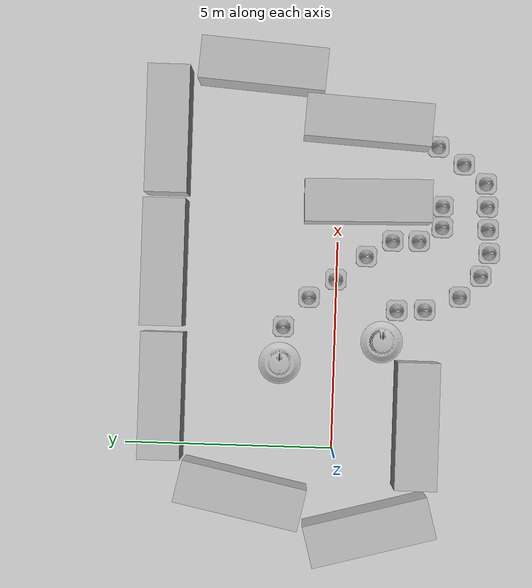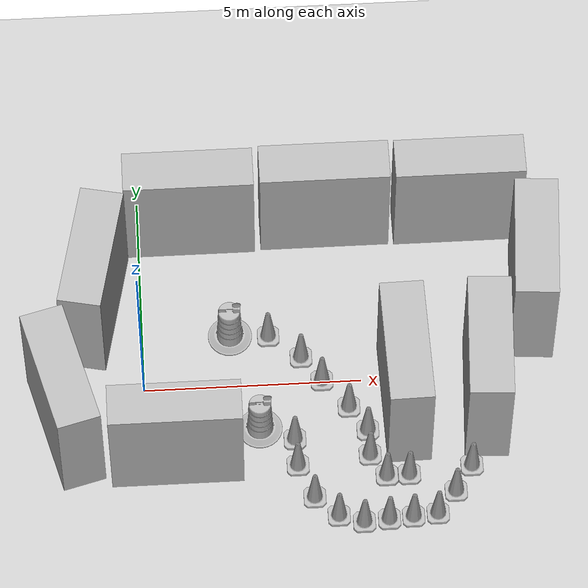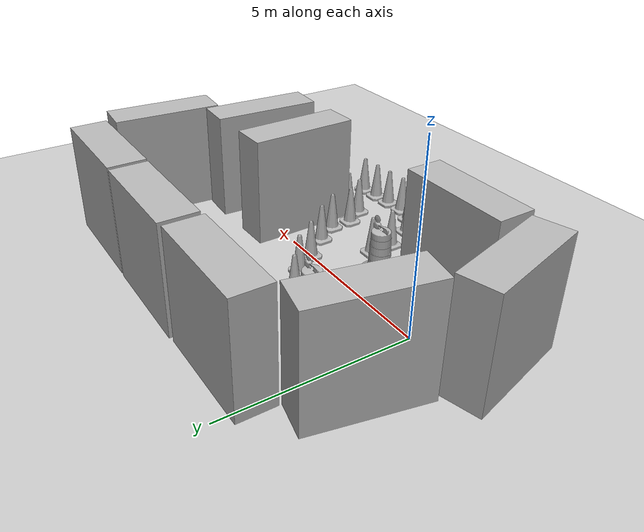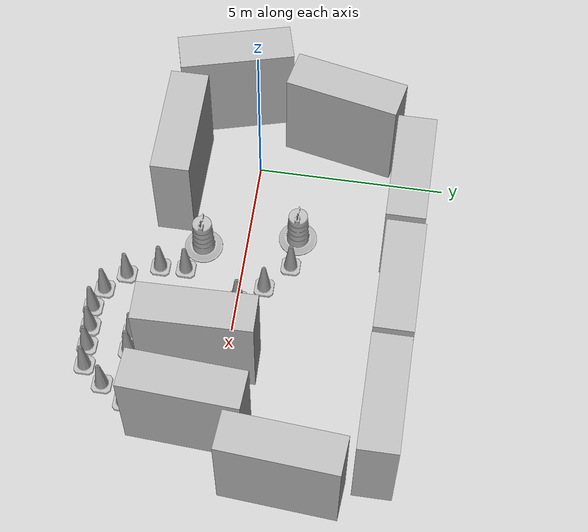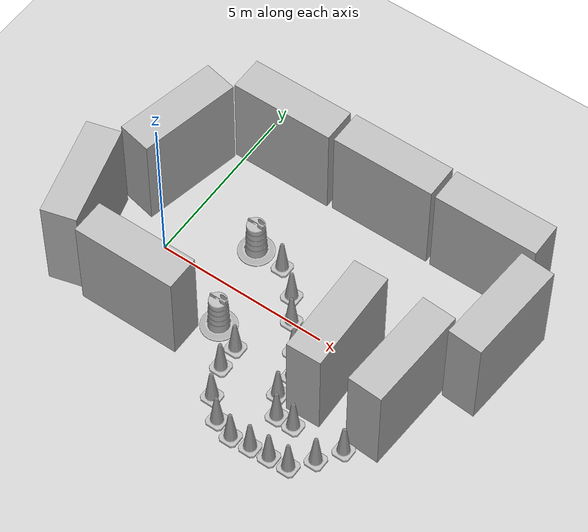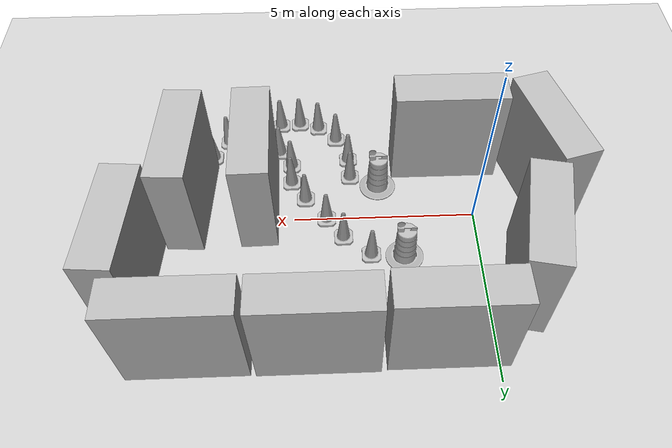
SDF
<sdf version="1.7">
 <world name="default">
  <light name="sun" type="directional">
   <pose>0 0 10 0 -0 0</pose>
   <diffuse>0.8 0.8 0.8 1</diffuse>
   <specular>0.2 0.2 0.2 1</specular>
   <attenuation>
    <range>1000</range>
    <constant>0.9</constant>
    <linear>0.01</linear>
    <quadratic>0.001</quadratic>
   </attenuation>
   <direction>-0.5 0.1 -0.9</direction>
   <spot><inner_angle>0</inner_angle><outer_angle>0</outer_angle><falloff>0</falloff></spot>
  </light>
  <model name="ground_plane">
   <static>1</static>
   <link name="link">
    <collision name="collision">
     <geometry><plane><normal>0 0 1</normal><size>100 100</size></plane></geometry>
     <surface>
      <contact><collide_bitmask>65535</collide_bitmask></contact>
      <friction><ode><mu>100</mu><mu2>50</mu2></ode></friction>
     </surface>
    </collision>
    <visual name="visual">
     <cast_shadows>0</cast_shadows>
     <geometry><plane><normal>0 0 1</normal><size>100 100</size></plane></geometry>
     <material>
      <script><uri>file://media/materials/scripts/gazebo.material</uri><name>Gazebo/Grey</name></script>
     </material>
    </visual>
   </link>
  </model>
  <gravity>0 0 -9.8</gravity>
  <magnetic_field>6e-06 2.3e-05 -4.2e-05</magnetic_field>
  <atmosphere type="adiabatic"/>
  <physics type="ode">
   <max_step_size>0.001</max_step_size>
   <real_time_factor>1</real_time_factor>
   <real_time_update_rate>1000</real_time_update_rate>
  </physics>
  <scene><ambient>0.4 0.4 0.4 1</ambient><background>0.7 0.7 0.7 1</background><shadows>1</shadows></scene>
  <audio><device>default</device></audio>
  <spherical_coordinates>
   <surface_model>EARTH_WGS84</surface_model>
   <latitude_deg>0</latitude_deg>
   <longitude_deg>0</longitude_deg>
   <elevation>0</elevation>
   <heading_deg>0</heading_deg>
  </spherical_coordinates>
  <model name="brick_box_3x1x3">
   <static>1</static>
   <link name="chassis">
    <pose>0 0 1.5 0 -0 0</pose>
    <collision name="collision"><geometry><box><size>3 1 3</size></box></geometry></collision>
    <visual name="visual">
     <geometry><mesh><uri>model://brick_box_3x1x3/meshes/simple_box.dae</uri><scale>3 1 3</scale></mesh></geometry>
     <material>
      <script>
       <uri>model://brick_box_3x1x3/materials/scripts</uri>
       <uri>model://brick_box_3x1x3/materials/textures</uri>
       <name>BrickBox/Diffuse</name>
      </script>
     </material>
    </visual>
   </link>
   <pose>1.22621 4.08594 0 0 -0 0</pose>
  </model>
  <model name="Construction Barrel">
   <link name="link">
    <inertial>
     <pose>0 0 0.4 0 -0 0</pose>
     <mass>500</mass>
     <inertia><ixx>51.2096</ixx><iyy>51.2096</iyy><izz>25</izz><ixy>0</ixy><ixz>0</ixz><iyz>0</iyz></inertia>
    </inertial>
    <collision name="collision">
     <geometry><mesh><uri>model://construction_barrel/meshes/construction_barrel.dae</uri></mesh></geometry>
    </collision>
    <visual name="visual">
     <geometry><mesh><uri>model://construction_barrel/meshes/construction_barrel.dae</uri></mesh></geometry>
    </visual>
   </link>
   <pose>2.03383 1.32116 0 1e-06 1e-06 -6.5e-05</pose>
  </model>
  <model name="Construction Barrel_0">
   <link name="link">
    <inertial>
     <pose>0 0 0.4 0 -0 0</pose>
     <mass>500</mass>
     <inertia><ixx>51.2096</ixx><iyy>51.2096</iyy><izz>25</izz><ixy>0</ixy><ixz>0</ixz><iyz>0</iyz></inertia>
    </inertial>
    <collision name="collision">
     <geometry><mesh><uri>model://construction_barrel/meshes/construction_barrel.dae</uri></mesh></geometry>
    </collision>
    <visual name="visual">
     <geometry><mesh><uri>model://construction_barrel/meshes/construction_barrel.dae</uri></mesh></geometry>
    </visual>
   </link>
   <pose>2.6173 -1.13706 0 0 -0 0.0256</pose>
  </model>
  <model name="Construction Cone">
   <link name="link">
    <collision name="collision">
     <geometry>
      <mesh><scale>10 10 10</scale><uri>model://construction_cone/meshes/construction_cone.dae</uri></mesh>
     </geometry>
    </collision>
    <visual name="visual">
     <geometry>
      <mesh><scale>10 10 10</scale><uri>model://construction_cone/meshes/construction_cone.dae</uri></mesh>
     </geometry>
    </visual>
    <inertial>
     <inertia><ixx>1</ixx><ixy>0</ixy><ixz>0</ixz><iyy>1</iyy><iyz>0</iyz><izz>1</izz></inertia>
     <mass>1</mass>
    </inertial>
   </link>
   <pose>2.9208 1.25496 -0 0 -0 0</pose>
  </model>
  <model name="Construction Cone_0">
   <link name="link">
    <collision name="collision">
     <geometry>
      <mesh><scale>10 10 10</scale><uri>model://construction_cone/meshes/construction_cone.dae</uri></mesh>
     </geometry>
    </collision>
    <visual name="visual">
     <geometry>
      <mesh><scale>10 10 10</scale><uri>model://construction_cone/meshes/construction_cone.dae</uri></mesh>
     </geometry>
    </visual>
    <inertial>
     <inertia><ixx>1</ixx><ixy>0</ixy><ixz>0</ixz><iyy>1</iyy><iyz>0</iyz><izz>1</izz></inertia>
     <mass>1</mass>
    </inertial>
   </link>
   <pose>3.65109 0.655025 -0 0 -0 0</pose>
  </model>
  <model name="Construction Cone_1">
   <link name="link">
    <collision name="collision">
     <geometry>
      <mesh><scale>10 10 10</scale><uri>model://construction_cone/meshes/construction_cone.dae</uri></mesh>
     </geometry>
    </collision>
    <visual name="visual">
     <geometry>
      <mesh><scale>10 10 10</scale><uri>model://construction_cone/meshes/construction_cone.dae</uri></mesh>
     </geometry>
    </visual>
    <inertial>
     <inertia><ixx>1</ixx><ixy>0</ixy><ixz>0</ixz><iyy>1</iyy><iyz>0</iyz><izz>1</izz></inertia>
     <mass>1</mass>
    </inertial>
   </link>
   <pose>3.39667 -1.48084 -1e-05 -0 -0 -0</pose>
  </model>
  <model name="Construction Cone_2">
   <link name="link">
    <collision name="collision">
     <geometry>
      <mesh><scale>10 10 10</scale><uri>model://construction_cone/meshes/construction_cone.dae</uri></mesh>
     </geometry>
    </collision>
    <visual name="visual">
     <geometry>
      <mesh><scale>10 10 10</scale><uri>model://construction_cone/meshes/construction_cone.dae</uri></mesh>
     </geometry>
    </visual>
    <inertial>
     <inertia><ixx>1</ixx><ixy>0</ixy><ixz>0</ixz><iyy>1</iyy><iyz>0</iyz><izz>1</izz></inertia>
     <mass>1</mass>
    </inertial>
   </link>
   <pose>4.10106 0.017647 -0 0 -1e-06 0</pose>
  </model>
  <model name="Construction Cone_3">
   <link name="link">
    <collision name="collision">
     <geometry>
      <mesh><scale>10 10 10</scale><uri>model://construction_cone/meshes/construction_cone.dae</uri></mesh>
     </geometry>
    </collision>
    <visual name="visual">
     <geometry>
      <mesh><scale>10 10 10</scale><uri>model://construction_cone/meshes/construction_cone.dae</uri></mesh>
     </geometry>
    </visual>
    <inertial>
     <inertia><ixx>1</ixx><ixy>0</ixy><ixz>0</ixz><iyy>1</iyy><iyz>0</iyz><izz>1</izz></inertia>
     <mass>1</mass>
    </inertial>
   </link>
   <pose>4.68209 -0.705332 -0 0 -1e-06 0</pose>
  </model>
  <model name="Construction Cone_4">
   <link name="link">
    <collision name="collision">
     <geometry>
      <mesh><scale>10 10 10</scale><uri>model://construction_cone/meshes/construction_cone.dae</uri></mesh>
     </geometry>
    </collision>
    <visual name="visual">
     <geometry>
      <mesh><scale>10 10 10</scale><uri>model://construction_cone/meshes/construction_cone.dae</uri></mesh>
     </geometry>
    </visual>
    <inertial>
     <inertia><ixx>1</ixx><ixy>0</ixy><ixz>0</ixz><iyy>1</iyy><iyz>0</iyz><izz>1</izz></inertia>
     <mass>1</mass>
    </inertial>
   </link>
   <pose>5.07891 -1.33197 -1e-05 0 -0 0.002484</pose>
  </model>
  <model name="Construction Cone_5">
   <link name="link">
    <collision name="collision">
     <geometry>
      <mesh><scale>10 10 10</scale><uri>model://construction_cone/meshes/construction_cone.dae</uri></mesh>
     </geometry>
    </collision>
    <visual name="visual">
     <geometry>
      <mesh><scale>10 10 10</scale><uri>model://construction_cone/meshes/construction_cone.dae</uri></mesh>
     </geometry>
    </visual>
    <inertial>
     <inertia><ixx>1</ixx><ixy>0</ixy><ixz>0</ixz><iyy>1</iyy><iyz>0</iyz><izz>1</izz></inertia>
     <mass>1</mass>
    </inertial>
   </link>
   <pose>3.42954 -2.15705 -0 0 -0 0</pose>
  </model>
  <model name="Construction Cone_6">
   <link name="link">
    <collision name="collision">
     <geometry>
      <mesh><scale>10 10 10</scale><uri>model://construction_cone/meshes/construction_cone.dae</uri></mesh>
     </geometry>
    </collision>
    <visual name="visual">
     <geometry>
      <mesh><scale>10 10 10</scale><uri>model://construction_cone/meshes/construction_cone.dae</uri></mesh>
     </geometry>
    </visual>
    <inertial>
     <inertia><ixx>1</ixx><ixy>0</ixy><ixz>0</ixz><iyy>1</iyy><iyz>0</iyz><izz>1</izz></inertia>
     <mass>1</mass>
    </inertial>
   </link>
   <pose>3.76774 -2.9935 -0 0 -0 0</pose>
  </model>
  <model name="Construction Cone_7">
   <link name="link">
    <collision name="collision">
     <geometry>
      <mesh><scale>10 10 10</scale><uri>model://construction_cone/meshes/construction_cone.dae</uri></mesh>
     </geometry>
    </collision>
    <visual name="visual">
     <geometry>
      <mesh><scale>10 10 10</scale><uri>model://construction_cone/meshes/construction_cone.dae</uri></mesh>
     </geometry>
    </visual>
    <inertial>
     <inertia><ixx>1</ixx><ixy>0</ixy><ixz>0</ixz><iyy>1</iyy><iyz>0</iyz><izz>1</izz></inertia>
     <mass>1</mass>
    </inertial>
   </link>
   <pose>5.09133 -1.97064 -0 0 -0 0.001414</pose>
  </model>
  <model name="Construction Cone_8">
   <link name="link">
    <collision name="collision">
     <geometry>
      <mesh><scale>10 10 10</scale><uri>model://construction_cone/meshes/construction_cone.dae</uri></mesh>
     </geometry>
    </collision>
    <visual name="visual">
     <geometry>
      <mesh><scale>10 10 10</scale><uri>model://construction_cone/meshes/construction_cone.dae</uri></mesh>
     </geometry>
    </visual>
    <inertial>
     <inertia><ixx>1</ixx><ixy>0</ixy><ixz>0</ixz><iyy>1</iyy><iyz>0</iyz><izz>1</izz></inertia>
     <mass>1</mass>
    </inertial>
   </link>
   <pose>5.44094 -2.52188 -1e-05 0 0 -8.4e-05</pose>
  </model>
  <model name="Construction Cone_9">
   <link name="link">
    <collision name="collision">
     <geometry>
      <mesh><scale>10 10 10</scale><uri>model://construction_cone/meshes/construction_cone.dae</uri></mesh>
     </geometry>
    </collision>
    <visual name="visual">
     <geometry>
      <mesh><scale>10 10 10</scale><uri>model://construction_cone/meshes/construction_cone.dae</uri></mesh>
     </geometry>
    </visual>
    <inertial>
     <inertia><ixx>1</ixx><ixy>0</ixy><ixz>0</ixz><iyy>1</iyy><iyz>0</iyz><izz>1</izz></inertia>
     <mass>1</mass>
    </inertial>
   </link>
   <pose>4.29063 -3.48837 -0 0 -1e-06 0</pose>
  </model>
  <model name="Construction Cone_10">
   <link name="link">
    <collision name="collision">
     <geometry>
      <mesh><scale>10 10 10</scale><uri>model://construction_cone/meshes/construction_cone.dae</uri></mesh>
     </geometry>
    </collision>
    <visual name="visual">
     <geometry>
      <mesh><scale>10 10 10</scale><uri>model://construction_cone/meshes/construction_cone.dae</uri></mesh>
     </geometry>
    </visual>
    <inertial>
     <inertia><ixx>1</ixx><ixy>0</ixy><ixz>0</ixz><iyy>1</iyy><iyz>0</iyz><izz>1</izz></inertia>
     <mass>1</mass>
    </inertial>
   </link>
   <pose>4.85367 -3.67849 -0 1e-06 -0 0</pose>
  </model>
  <model name="Construction Cone_11">
   <link name="link">
    <collision name="collision">
     <geometry>
      <mesh><scale>10 10 10</scale><uri>model://construction_cone/meshes/construction_cone.dae</uri></mesh>
     </geometry>
    </collision>
    <visual name="visual">
     <geometry>
      <mesh><scale>10 10 10</scale><uri>model://construction_cone/meshes/construction_cone.dae</uri></mesh>
     </geometry>
    </visual>
    <inertial>
     <inertia><ixx>1</ixx><ixy>0</ixy><ixz>0</ixz><iyy>1</iyy><iyz>0</iyz><izz>1</izz></inertia>
     <mass>1</mass>
    </inertial>
   </link>
   <pose>5.95183 -2.51706 -0 0 -1e-06 0</pose>
  </model>
  <model name="Construction Cone_12">
   <link name="link">
    <collision name="collision">
     <geometry>
      <mesh><scale>10 10 10</scale><uri>model://construction_cone/meshes/construction_cone.dae</uri></mesh>
     </geometry>
    </collision>
    <visual name="visual">
     <geometry>
      <mesh><scale>10 10 10</scale><uri>model://construction_cone/meshes/construction_cone.dae</uri></mesh>
     </geometry>
    </visual>
    <inertial>
     <inertia><ixx>1</ixx><ixy>0</ixy><ixz>0</ixz><iyy>1</iyy><iyz>0</iyz><izz>1</izz></inertia>
     <mass>1</mass>
    </inertial>
   </link>
   <pose>5.42428 -3.63425 -1e-05 -1e-06 0 0</pose>
  </model>
  <model name="Construction Cone_13">
   <link name="link">
    <collision name="collision">
     <geometry>
      <mesh><scale>10 10 10</scale><uri>model://construction_cone/meshes/construction_cone.dae</uri></mesh>
     </geometry>
    </collision>
    <visual name="visual">
     <geometry>
      <mesh><scale>10 10 10</scale><uri>model://construction_cone/meshes/construction_cone.dae</uri></mesh>
     </geometry>
    </visual>
    <inertial>
     <inertia><ixx>1</ixx><ixy>0</ixy><ixz>0</ixz><iyy>1</iyy><iyz>0</iyz><izz>1</izz></inertia>
     <mass>1</mass>
    </inertial>
   </link>
   <pose>5.97515 -3.59985 -0 0 -1e-06 0</pose>
  </model>
  <model name="Construction Cone_14">
   <link name="link">
    <collision name="collision">
     <geometry>
      <mesh><scale>10 10 10</scale><uri>model://construction_cone/meshes/construction_cone.dae</uri></mesh>
     </geometry>
    </collision>
    <visual name="visual">
     <geometry>
      <mesh><scale>10 10 10</scale><uri>model://construction_cone/meshes/construction_cone.dae</uri></mesh>
     </geometry>
    </visual>
    <inertial>
     <inertia><ixx>1</ixx><ixy>0</ixy><ixz>0</ixz><iyy>1</iyy><iyz>0</iyz><izz>1</izz></inertia>
     <mass>1</mass>
    </inertial>
   </link>
   <pose>6.53399 -3.55208 -0 0 -0 0</pose>
  </model>
  <model name="Construction Cone_15">
   <link name="link">
    <collision name="collision">
     <geometry>
      <mesh><scale>10 10 10</scale><uri>model://construction_cone/meshes/construction_cone.dae</uri></mesh>
     </geometry>
    </collision>
    <visual name="visual">
     <geometry>
      <mesh><scale>10 10 10</scale><uri>model://construction_cone/meshes/construction_cone.dae</uri></mesh>
     </geometry>
    </visual>
    <inertial>
     <inertia><ixx>1</ixx><ixy>0</ixy><ixz>0</ixz><iyy>1</iyy><iyz>0</iyz><izz>1</izz></inertia>
     <mass>1</mass>
    </inertial>
   </link>
   <pose>6.98375 -3.00389 -0 0 -1e-06 0</pose>
  </model>
  <model name="Construction Cone_16">
   <link name="link">
    <collision name="collision">
     <geometry>
      <mesh><scale>10 10 10</scale><uri>model://construction_cone/meshes/construction_cone.dae</uri></mesh>
     </geometry>
    </collision>
    <visual name="visual">
     <geometry>
      <mesh><scale>10 10 10</scale><uri>model://construction_cone/meshes/construction_cone.dae</uri></mesh>
     </geometry>
    </visual>
    <inertial>
     <inertia><ixx>1</ixx><ixy>0</ixy><ixz>0</ixz><iyy>1</iyy><iyz>0</iyz><izz>1</izz></inertia>
     <mass>1</mass>
    </inertial>
   </link>
   <pose>7.39298 -2.37136 -0 0 -0 0</pose>
  </model>
  <model name="brick_box_3x1x3_0">
   <static>1</static>
   <link name="chassis">
    <pose>0 0 1.5 0 -0 0</pose>
    <collision name="collision"><geometry><box><size>3 1 3</size></box></geometry></collision>
    <visual name="visual">
     <geometry><mesh><uri>model://brick_box_3x1x3/meshes/simple_box.dae</uri><scale>3 1 3</scale></mesh></geometry>
     <material>
      <script>
       <uri>model://brick_box_3x1x3/materials/scripts</uri>
       <uri>model://brick_box_3x1x3/materials/textures</uri>
       <name>BrickBox/Diffuse</name>
      </script>
     </material>
    </visual>
   </link>
   <pose>5.9531 -0.656438 0 0 0 -1.55109</pose>
  </model>
  <model name="brick_box_3x1x3_1">
   <static>1</static>
   <link name="chassis">
    <pose>0 0 1.5 0 -0 0</pose>
    <collision name="collision"><geometry><box><size>3 1 3</size></box></geometry></collision>
    <visual name="visual">
     <geometry><mesh><uri>model://brick_box_3x1x3/meshes/simple_box.dae</uri><scale>3 1 3</scale></mesh></geometry>
     <material>
      <script>
       <uri>model://brick_box_3x1x3/materials/scripts</uri>
       <uri>model://brick_box_3x1x3/materials/textures</uri>
       <name>BrickBox/Diffuse</name>
      </script>
     </material>
    </visual>
   </link>
   <pose>7.84038 -0.61873 0 0 -0 1.51285</pose>
  </model>
  <model name="brick_box_3x1x3_2">
   <static>1</static>
   <link name="chassis">
    <pose>0 0 1.5 0 -0 0</pose>
    <collision name="collision"><geometry><box><size>3 1 3</size></box></geometry></collision>
    <visual name="visual">
     <geometry><mesh><uri>model://brick_box_3x1x3/meshes/simple_box.dae</uri><scale>3 1 3</scale></mesh></geometry>
     <material>
      <script>
       <uri>model://brick_box_3x1x3/materials/scripts</uri>
       <uri>model://brick_box_3x1x3/materials/textures</uri>
       <name>BrickBox/Diffuse</name>
      </script>
     </material>
    </visual>
   </link>
   <pose>7.49753 4.11071 0 0 -0 0</pose>
  </model>
  <model name="brick_box_3x1x3_3">
   <static>1</static>
   <link name="chassis">
    <pose>0 0 1.5 0 -0 0</pose>
    <collision name="collision"><geometry><box><size>3 1 3</size></box></geometry></collision>
    <visual name="visual">
     <geometry><mesh><uri>model://brick_box_3x1x3/meshes/simple_box.dae</uri><scale>3 1 3</scale></mesh></geometry>
     <material>
      <script>
       <uri>model://brick_box_3x1x3/materials/scripts</uri>
       <uri>model://brick_box_3x1x3/materials/textures</uri>
       <name>BrickBox/Diffuse</name>
      </script>
     </material>
    </visual>
   </link>
   <pose>4.36913 4.12565 0 0 -0 0</pose>
  </model>
  <model name="brick_box_3x1x3_4">
   <static>1</static>
   <link name="chassis">
    <pose>0 0 1.5 0 -0 0</pose>
    <collision name="collision"><geometry><box><size>3 1 3</size></box></geometry></collision>
    <visual name="visual">
     <geometry><mesh><uri>model://brick_box_3x1x3/meshes/simple_box.dae</uri><scale>3 1 3</scale></mesh></geometry>
     <material>
      <script>
       <uri>model://brick_box_3x1x3/materials/scripts</uri>
       <uri>model://brick_box_3x1x3/materials/textures</uri>
       <name>BrickBox/Diffuse</name>
      </script>
     </material>
    </visual>
   </link>
   <pose>9.08779 1.90272 0 0 0 -1.64621</pose>
  </model>
  <model name="brick_box_3x1x3_5">
   <static>1</static>
   <link name="chassis">
    <pose>0 0 1.5 0 -0 0</pose>
    <collision name="collision"><geometry><box><size>3 1 3</size></box></geometry></collision>
    <visual name="visual">
     <geometry><mesh><uri>model://brick_box_3x1x3/meshes/simple_box.dae</uri><scale>3 1 3</scale></mesh></geometry>
     <material>
      <script>
       <uri>model://brick_box_3x1x3/materials/scripts</uri>
       <uri>model://brick_box_3x1x3/materials/textures</uri>
       <name>BrickBox/Diffuse</name>
      </script>
     </material>
    </visual>
   </link>
   <pose>-1.05478 2.15309 0 0 -0 1.36378</pose>
  </model>
  <model name="brick_box_3x1x3_6">
   <static>1</static>
   <link name="chassis">
    <pose>0 0 1.5 0 -0 0</pose>
    <collision name="collision"><geometry><box><size>3 1 3</size></box></geometry></collision>
    <visual name="visual">
     <geometry><mesh><uri>model://brick_box_3x1x3/meshes/simple_box.dae</uri><scale>3 1 3</scale></mesh></geometry>
     <material>
      <script>
       <uri>model://brick_box_3x1x3/materials/scripts</uri>
       <uri>model://brick_box_3x1x3/materials/textures</uri>
       <name>BrickBox/Diffuse</name>
      </script>
     </material>
    </visual>
   </link>
   <pose>-1.82369 -0.912311 0 0 0 -1.30672</pose>
  </model>
  <model name="brick_box_3x1x3_7">
   <static>1</static>
   <link name="chassis">
    <pose>0 0 1.5 0 -0 0</pose>
    <collision name="collision"><geometry><box><size>3 1 3</size></box></geometry></collision>
    <visual name="visual">
     <geometry><mesh><uri>model://brick_box_3x1x3/meshes/simple_box.dae</uri><scale>3 1 3</scale></mesh></geometry>
     <material>
      <script>
       <uri>model://brick_box_3x1x3/materials/scripts</uri>
       <uri>model://brick_box_3x1x3/materials/textures</uri>
       <name>BrickBox/Diffuse</name>
      </script>
     </material>
    </visual>
   </link>
   <pose>0.689035 -1.95945 0 0 -0 0</pose>
  </model>
 </world>
</sdf>
